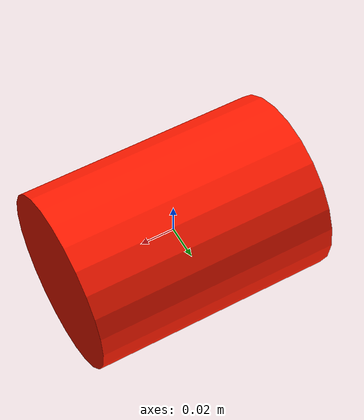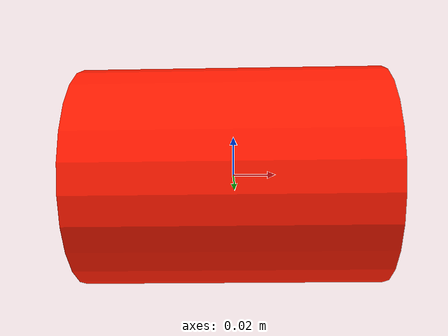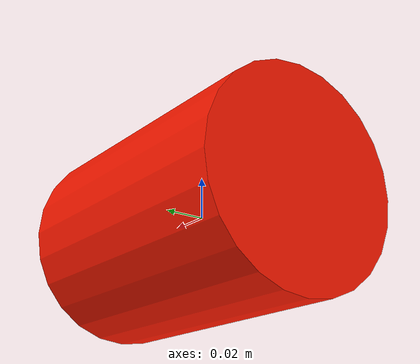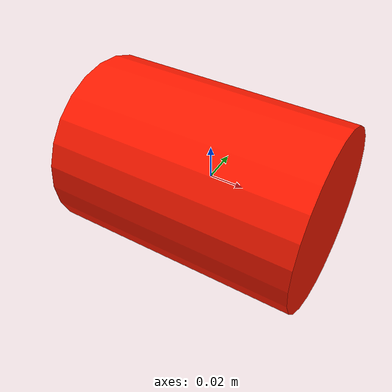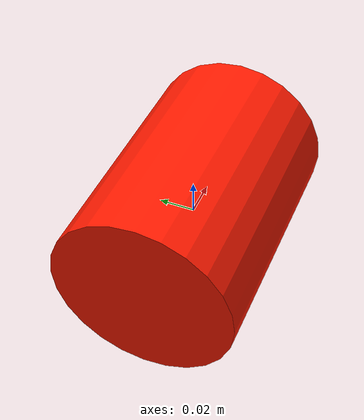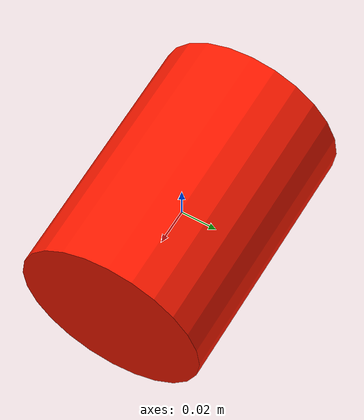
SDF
<?xml version="1.0"?>
<sdf version="1.4">
  <model name="002_master_chef_can_textured">
    <pose>0 0 0  0 1.57 0</pose>
    <link name="body">
      <inertial>
        <mass> 1.0 </mass>
        <pose>0 0 0 0 0 0</pose>
        <inertia>
          <ixx>0.0007014092721457655</ixx>
          <ixy>0.0</ixy>
          <ixz>0.0</ixz>
          <iyy>0.0023772974006212805</iyy>
          <iyz>0.0</iyz>
          <izz>0.0027281266896929538</izz>
        </inertia>
      </inertial>
      <visual name="visual">
        <geometry>
          <cylinder>
            <length>0.1401640016847523</length>
            <radius>0.05132912361890561</radius>
          </cylinder>
        </geometry>
        <material>
          <ambient>1 0 1 1</ambient>
          <diffuse>1 0.1 0 1</diffuse>
          <specular>0.1 0.1 0.1 1</specular>
          <emissive>0 0 0 0</emissive>
        </material>
        <pose>0 0 0 0 -0 0</pose>
        <transparency>0</transparency>
        <cast_shadows>1</cast_shadows>
      </visual>
      <collision name="collision">
        <geometry>
          <cylinder>
            <length>0.1401640016847523</length>
            <radius>0.05132912361890561</radius>
          </cylinder>
        </geometry>
        <max_contacts>10</max_contacts>
        <surface>
          <friction>
            <ode>
              <mu>0.8</mu>
              <mu2>0.8</mu2>
              <slip1>0</slip1>
              <slip2>0</slip2>
            </ode>
            <torsional>
              <ode/>
            </torsional>
          </friction>
          <contact>
            <ode>
              <kp>1000000.0</kp>
              <kd>1.0</kd>
              <max_vel>0.0</max_vel>
            </ode>
          </contact>
        </surface>
        <pose>0 0 0 0 0 0</pose>
      </collision>
    </link>
  </model>
</sdf>
